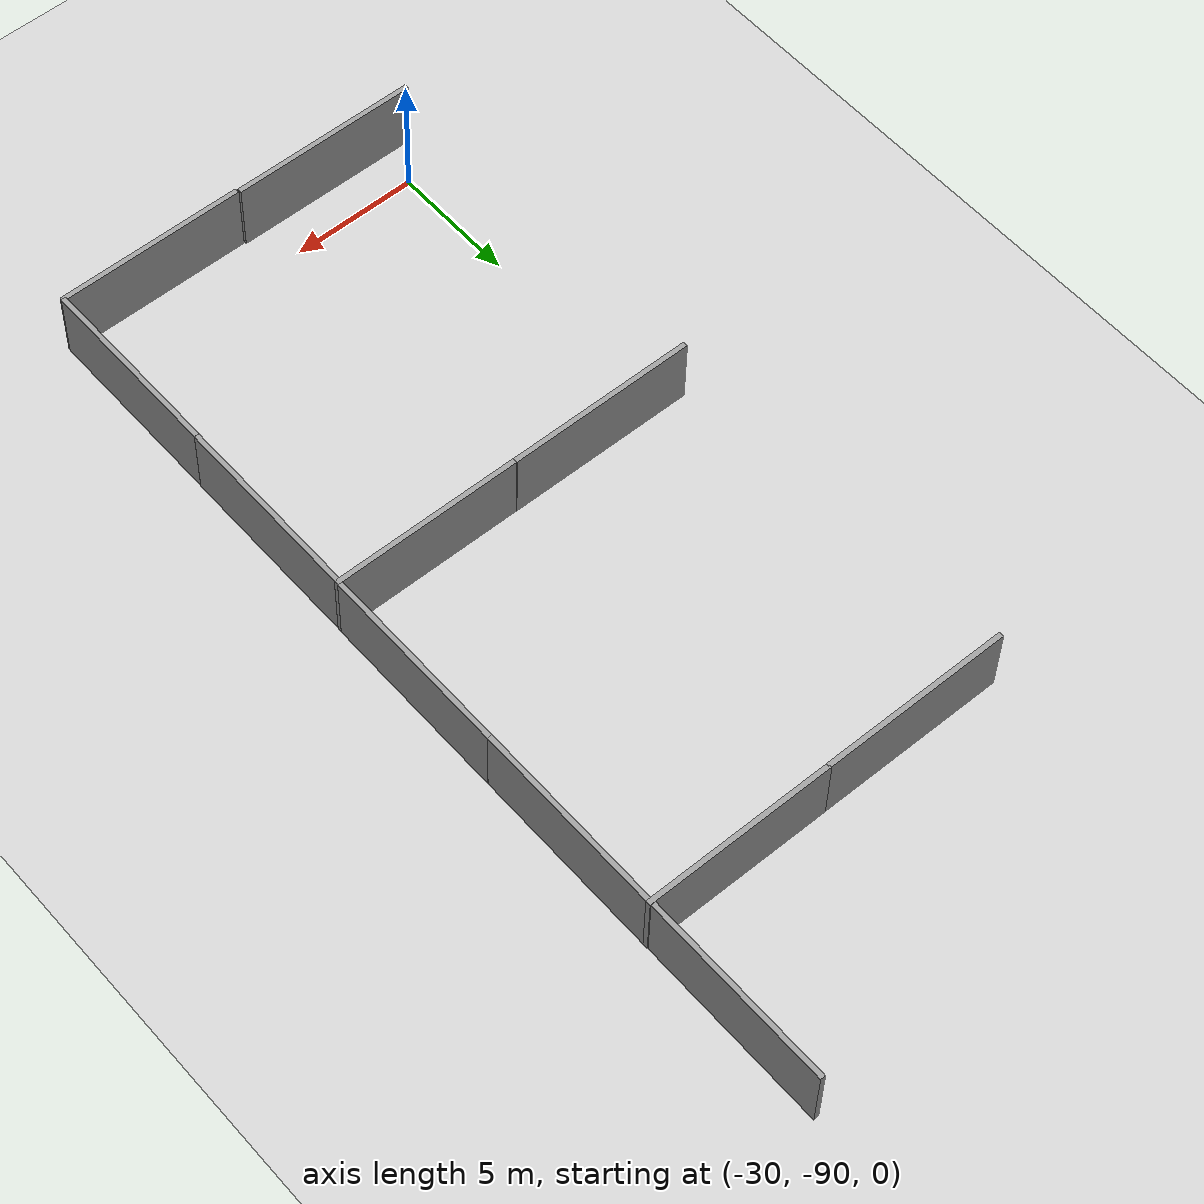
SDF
<sdf version="1.6">
 <world name="default">
  <model name="ground_plane">
   <static>1</static>
   <link name="link">
    <collision name="collision">
     <geometry><plane><normal>0 0 1</normal><size>100 100</size></plane></geometry>
     <surface>
      <contact><collide_bitmask>65535</collide_bitmask></contact>
      <friction><ode><mu>100</mu><mu2>50</mu2></ode></friction>
     </surface>
    </collision>
    <visual name="visual">
     <cast_shadows>0</cast_shadows>
     <geometry><plane><normal>0 0 1</normal><size>100 100</size></plane></geometry>
     <material>
      <script><uri>file://media/materials/scripts/gazebo.material</uri><name>Gazebo/Grey</name></script>
     </material>
    </visual>
   </link>
  </model>
  <model name="grey_wall_clone_1_clone_0">
   <static>1</static>
   <link name="link">
    <pose>0 0 1.4 0 -0 0</pose>
    <collision name="collision"><geometry><box><size>7.5 0.2 2.8</size></box></geometry></collision>
    <visual name="visual">
     <cast_shadows>0</cast_shadows>
     <geometry><box><size>7.5 0.2 2.8</size></box></geometry>
     <material>
      <script>
       <uri>model://grey_wall/materials/scripts</uri>
       <uri>model://grey_wall/materials/textures</uri>
       <name>vrc/grey_wall</name>
      </script>
     </material>
    </visual>
   </link>
   <pose>-16.3333 -57.6511 0 0 0 -1.5708</pose>
  </model>
  <model name="grey_wall_clone_clone">
   <static>1</static>
   <link name="link">
    <pose>0 0 1.4 0 -0 0</pose>
    <collision name="collision"><geometry><box><size>7.5 0.2 2.8</size></box></geometry></collision>
    <visual name="visual">
     <cast_shadows>0</cast_shadows>
     <geometry><box><size>7.5 0.2 2.8</size></box></geometry>
     <material>
      <script>
       <uri>model://grey_wall/materials/scripts</uri>
       <uri>model://grey_wall/materials/textures</uri>
       <name>vrc/grey_wall</name>
      </script>
     </material>
    </visual>
   </link>
   <pose>-19.9643 -61.519 0 0 -0 0</pose>
  </model>
  <model name="grey_wall_clone_clone_0">
   <static>1</static>
   <link name="link">
    <pose>0 0 1.4 0 -0 0</pose>
    <collision name="collision"><geometry><box><size>7.5 0.2 2.8</size></box></geometry></collision>
    <visual name="visual">
     <cast_shadows>0</cast_shadows>
     <geometry><box><size>7.5 0.2 2.8</size></box></geometry>
     <material>
      <script>
       <uri>model://grey_wall/materials/scripts</uri>
       <uri>model://grey_wall/materials/textures</uri>
       <name>vrc/grey_wall</name>
      </script>
     </material>
    </visual>
   </link>
   <pose>-27.4205 -61.5243 0 0 -0 0</pose>
  </model>
  <model name="grey_wall_clone_1_clone_0_clone">
   <static>1</static>
   <link name="link">
    <pose>0 0 1.4 0 -0 0</pose>
    <collision name="collision"><geometry><box><size>7.5 0.2 2.8</size></box></geometry></collision>
    <visual name="visual">
     <cast_shadows>0</cast_shadows>
     <geometry><box><size>7.5 0.2 2.8</size></box></geometry>
     <material>
      <script>
       <uri>model://grey_wall/materials/scripts</uri>
       <uri>model://grey_wall/materials/textures</uri>
       <name>vrc/grey_wall</name>
      </script>
     </material>
    </visual>
   </link>
   <pose>-16.3196 -65.359 0 0 0 -1.5708</pose>
  </model>
  <model name="grey_wall_clone_1_clone_0_clone_0">
   <static>1</static>
   <link name="link">
    <pose>0 0 1.4 0 -0 0</pose>
    <collision name="collision"><geometry><box><size>7.5 0.2 2.8</size></box></geometry></collision>
    <visual name="visual">
     <cast_shadows>0</cast_shadows>
     <geometry><box><size>7.5 0.2 2.8</size></box></geometry>
     <material>
      <script>
       <uri>model://grey_wall/materials/scripts</uri>
       <uri>model://grey_wall/materials/textures</uri>
       <name>vrc/grey_wall</name>
      </script>
     </material>
    </visual>
   </link>
   <pose>-16.3178 -72.8354 0 0 0 -1.5708</pose>
  </model>
  <model name="grey_wall_clone_clone_clone">
   <static>1</static>
   <link name="link">
    <pose>0 0 1.4 0 -0 0</pose>
    <collision name="collision"><geometry><box><size>7.5 0.2 2.8</size></box></geometry></collision>
    <visual name="visual">
     <cast_shadows>0</cast_shadows>
     <geometry><box><size>7.5 0.2 2.8</size></box></geometry>
     <material>
      <script>
       <uri>model://grey_wall/materials/scripts</uri>
       <uri>model://grey_wall/materials/textures</uri>
       <name>vrc/grey_wall</name>
      </script>
     </material>
    </visual>
   </link>
   <pose>-19.9781 -76.6629 0 0 -0 0</pose>
  </model>
  <model name="grey_wall_clone_clone_clone_0">
   <static>1</static>
   <link name="link">
    <pose>0 0 1.4 0 -0 0</pose>
    <collision name="collision"><geometry><box><size>7.5 0.2 2.8</size></box></geometry></collision>
    <visual name="visual">
     <cast_shadows>0</cast_shadows>
     <geometry><box><size>7.5 0.2 2.8</size></box></geometry>
     <material>
      <script>
       <uri>model://grey_wall/materials/scripts</uri>
       <uri>model://grey_wall/materials/textures</uri>
       <name>vrc/grey_wall</name>
      </script>
     </material>
    </visual>
   </link>
   <pose>-27.4671 -76.6561 0 0 -0 0</pose>
  </model>
  <model name="grey_wall_clone_1_clone_0_clone_0_clone">
   <static>1</static>
   <link name="link">
    <pose>0 0 1.4 0 -0 0</pose>
    <collision name="collision"><geometry><box><size>7.5 0.2 2.8</size></box></geometry></collision>
    <visual name="visual">
     <cast_shadows>0</cast_shadows>
     <geometry><box><size>7.5 0.2 2.8</size></box></geometry>
     <material>
      <script>
       <uri>model://grey_wall/materials/scripts</uri>
       <uri>model://grey_wall/materials/textures</uri>
       <name>vrc/grey_wall</name>
      </script>
     </material>
    </visual>
   </link>
   <pose>-16.3333 -80.4597 0 0 0 -1.5708</pose>
  </model>
  <model name="grey_wall_clone_1_clone_0_clone_0_clone_0">
   <static>1</static>
   <link name="link">
    <pose>0 0 1.4 0 -0 0</pose>
    <collision name="collision"><geometry><box><size>7.5 0.2 2.8</size></box></geometry></collision>
    <visual name="visual">
     <cast_shadows>0</cast_shadows>
     <geometry><box><size>7.5 0.2 2.8</size></box></geometry>
     <material>
      <script>
       <uri>model://grey_wall/materials/scripts</uri>
       <uri>model://grey_wall/materials/textures</uri>
       <name>vrc/grey_wall</name>
      </script>
     </material>
    </visual>
   </link>
   <pose>-16.3454 -87.968 0 0 0 -1.5708</pose>
  </model>
  <model name="grey_wall_clone_clone_clone_clone">
   <static>1</static>
   <link name="link">
    <pose>0 0 1.4 0 -0 0</pose>
    <collision name="collision"><geometry><box><size>7.5 0.2 2.8</size></box></geometry></collision>
    <visual name="visual">
     <cast_shadows>0</cast_shadows>
     <geometry><box><size>7.5 0.2 2.8</size></box></geometry>
     <material>
      <script>
       <uri>model://grey_wall/materials/scripts</uri>
       <uri>model://grey_wall/materials/textures</uri>
       <name>vrc/grey_wall</name>
      </script>
     </material>
    </visual>
   </link>
   <pose>-20.0151 -91.7084 0 0 -0 0</pose>
  </model>
  <model name="grey_wall_clone_clone_clone_clone_0">
   <static>1</static>
   <link name="link">
    <pose>0 0 1.4 0 -0 0</pose>
    <collision name="collision"><geometry><box><size>7.5 0.2 2.8</size></box></geometry></collision>
    <visual name="visual">
     <cast_shadows>0</cast_shadows>
     <geometry><box><size>7.5 0.2 2.8</size></box></geometry>
     <material>
      <script>
       <uri>model://grey_wall/materials/scripts</uri>
       <uri>model://grey_wall/materials/textures</uri>
       <name>vrc/grey_wall</name>
      </script>
     </material>
    </visual>
   </link>
   <pose>-27.5565 -91.6428 0 0 -0 0</pose>
  </model>
 </world>
</sdf>
